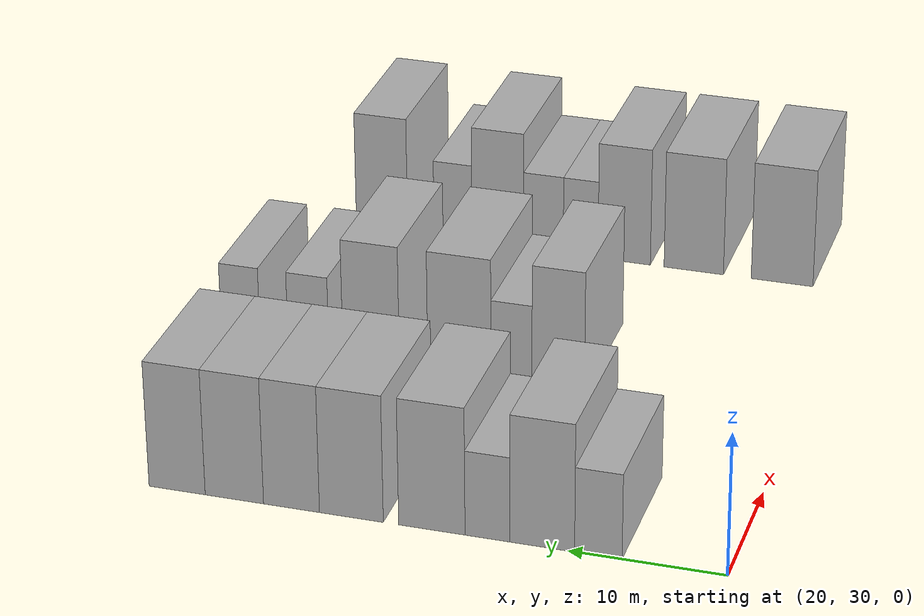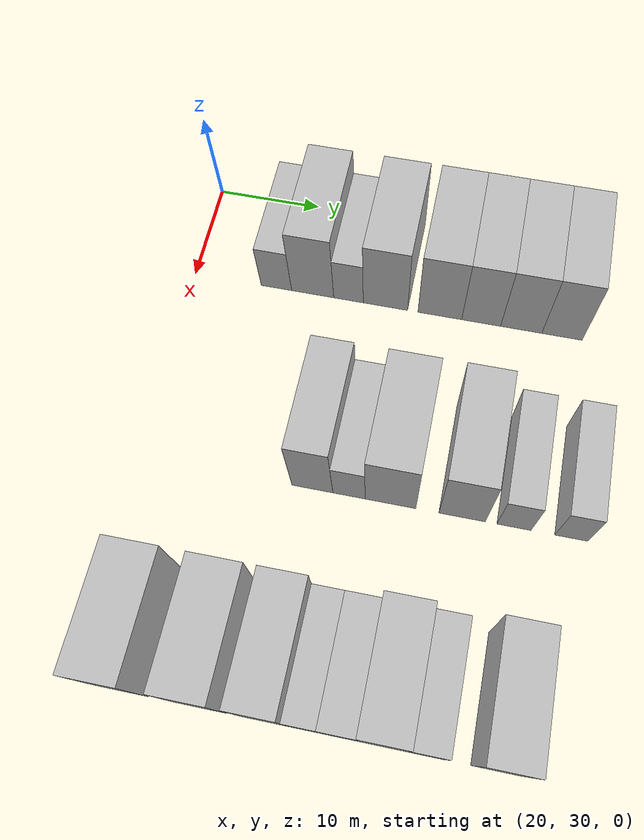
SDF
<sdf version="1.6">
 <world name="default">
  <model name="building_66">
   <static>1</static>
   <pose>25.0000 38.0858 0 0.000000 0.000000 0.000000</pose>
   <link name="link">
    <pose>0 0 3.00 0 0 0</pose>
    <collision name="collision"><geometry><box><size>10.0000 2.9948 6.0000</size></box></geometry></collision>
    <visual name="visual">
     <cast_shadows>0</cast_shadows>
     <geometry><box><size>10.0000 2.9948 6.0000</size></box></geometry>
     <material>
      <script>
       <uri>model://HANNAS_wall/materials/scripts</uri>
       <uri>model://HANNAS_wall/materials/textures</uri>
       <name>vrc/HANNAS_wall</name>
      </script>
     </material>
    </visual>
   </link>
  </model>
  <model name="building_67">
   <static>1</static>
   <pose>25.0000 41.6446 0 0.000000 0.000000 0.000000</pose>
   <link name="link">
    <pose>0 0 4.50 0 0 0</pose>
    <collision name="collision"><geometry><box><size>10.0000 4.1228 9.0000</size></box></geometry></collision>
    <visual name="visual">
     <cast_shadows>0</cast_shadows>
     <geometry><box><size>10.0000 4.1228 9.0000</size></box></geometry>
     <material>
      <script>
       <uri>model://HANNAS_wall/materials/scripts</uri>
       <uri>model://HANNAS_wall/materials/textures</uri>
       <name>vrc/HANNAS_wall</name>
      </script>
     </material>
    </visual>
   </link>
  </model>
  <model name="building_68">
   <static>1</static>
   <pose>25.0000 45.1408 0 0.000000 0.000000 0.000000</pose>
   <link name="link">
    <pose>0 0 3.00 0 0 0</pose>
    <collision name="collision"><geometry><box><size>10.0000 2.8695 6.0000</size></box></geometry></collision>
    <visual name="visual">
     <cast_shadows>0</cast_shadows>
     <geometry><box><size>10.0000 2.8695 6.0000</size></box></geometry>
     <material>
      <script>
       <uri>model://HANNAS_wall/materials/scripts</uri>
       <uri>model://HANNAS_wall/materials/textures</uri>
       <name>vrc/HANNAS_wall</name>
      </script>
     </material>
    </visual>
   </link>
  </model>
  <model name="building_69">
   <static>1</static>
   <pose>25.0000 48.7208 0 0.000000 0.000000 0.000000</pose>
   <link name="link">
    <pose>0 0 4.50 0 0 0</pose>
    <collision name="collision"><geometry><box><size>10.0000 4.2906 9.0000</size></box></geometry></collision>
    <visual name="visual">
     <cast_shadows>0</cast_shadows>
     <geometry><box><size>10.0000 4.2906 9.0000</size></box></geometry>
     <material>
      <script>
       <uri>model://HANNAS_wall/materials/scripts</uri>
       <uri>model://HANNAS_wall/materials/textures</uri>
       <name>vrc/HANNAS_wall</name>
      </script>
     </material>
    </visual>
   </link>
  </model>
  <model name="building_70">
   <static>1</static>
   <pose>25.0000 53.9550 0 0.000000 0.000000 0.000000</pose>
   <link name="link">
    <pose>0 0 4.50 0 0 0</pose>
    <collision name="collision"><geometry><box><size>10.0000 4.1778 9.0000</size></box></geometry></collision>
    <visual name="visual">
     <cast_shadows>0</cast_shadows>
     <geometry><box><size>10.0000 4.1778 9.0000</size></box></geometry>
     <material>
      <script>
       <uri>model://HANNAS_wall/materials/scripts</uri>
       <uri>model://HANNAS_wall/materials/textures</uri>
       <name>vrc/HANNAS_wall</name>
      </script>
     </material>
    </visual>
   </link>
  </model>
  <model name="building_71">
   <static>1</static>
   <pose>25.0000 57.8908 0 0.000000 0.000000 0.000000</pose>
   <link name="link">
    <pose>0 0 4.50 0 0 0</pose>
    <collision name="collision"><geometry><box><size>10.0000 3.6938 9.0000</size></box></geometry></collision>
    <visual name="visual">
     <cast_shadows>0</cast_shadows>
     <geometry><box><size>10.0000 3.6938 9.0000</size></box></geometry>
     <material>
      <script>
       <uri>model://HANNAS_wall/materials/scripts</uri>
       <uri>model://HANNAS_wall/materials/textures</uri>
       <name>vrc/HANNAS_wall</name>
      </script>
     </material>
    </visual>
   </link>
  </model>
  <model name="building_72">
   <static>1</static>
   <pose>25.0000 61.6819 0 0.000000 0.000000 0.000000</pose>
   <link name="link">
    <pose>0 0 4.50 0 0 0</pose>
    <collision name="collision"><geometry><box><size>10.0000 3.8883 9.0000</size></box></geometry></collision>
    <visual name="visual">
     <cast_shadows>0</cast_shadows>
     <geometry><box><size>10.0000 3.8883 9.0000</size></box></geometry>
     <material>
      <script>
       <uri>model://HANNAS_wall/materials/scripts</uri>
       <uri>model://HANNAS_wall/materials/textures</uri>
       <name>vrc/HANNAS_wall</name>
      </script>
     </material>
    </visual>
   </link>
  </model>
  <model name="building_73">
   <static>1</static>
   <pose>25.0000 65.5108 0 0.000000 0.000000 0.000000</pose>
   <link name="link">
    <pose>0 0 4.50 0 0 0</pose>
    <collision name="collision"><geometry><box><size>10.0000 3.7694 9.0000</size></box></geometry></collision>
    <visual name="visual">
     <cast_shadows>0</cast_shadows>
     <geometry><box><size>10.0000 3.7694 9.0000</size></box></geometry>
     <material>
      <script>
       <uri>model://HANNAS_wall/materials/scripts</uri>
       <uri>model://HANNAS_wall/materials/textures</uri>
       <name>vrc/HANNAS_wall</name>
      </script>
     </material>
    </visual>
   </link>
  </model>
  <model name="building_179">
   <static>1</static>
   <pose>44.0000 45.9286 0 0.000000 0.000000 0.000000</pose>
   <link name="link">
    <pose>0 0 4.50 0 0 0</pose>
    <collision name="collision"><geometry><box><size>10.0000 3.6117 9.0000</size></box></geometry></collision>
    <visual name="visual">
     <cast_shadows>0</cast_shadows>
     <geometry><box><size>10.0000 3.6117 9.0000</size></box></geometry>
     <material>
      <script>
       <uri>model://HANNAS_wall/materials/scripts</uri>
       <uri>model://HANNAS_wall/materials/textures</uri>
       <name>vrc/HANNAS_wall</name>
      </script>
     </material>
    </visual>
   </link>
  </model>
  <model name="building_180">
   <static>1</static>
   <pose>44.0000 49.1493 0 0.000000 0.000000 0.000000</pose>
   <link name="link">
    <pose>0 0 3.00 0 0 0</pose>
    <collision name="collision"><geometry><box><size>10.0000 2.8298 6.0000</size></box></geometry></collision>
    <visual name="visual">
     <cast_shadows>0</cast_shadows>
     <geometry><box><size>10.0000 2.8298 6.0000</size></box></geometry>
     <material>
      <script>
       <uri>model://HANNAS_wall/materials/scripts</uri>
       <uri>model://HANNAS_wall/materials/textures</uri>
       <name>vrc/HANNAS_wall</name>
      </script>
     </material>
    </visual>
   </link>
  </model>
  <model name="building_181">
   <static>1</static>
   <pose>44.0000 52.7676 0 0.000000 0.000000 0.000000</pose>
   <link name="link">
    <pose>0 0 4.50 0 0 0</pose>
    <collision name="collision"><geometry><box><size>10.0000 4.4067 9.0000</size></box></geometry></collision>
    <visual name="visual">
     <cast_shadows>0</cast_shadows>
     <geometry><box><size>10.0000 4.4067 9.0000</size></box></geometry>
     <material>
      <script>
       <uri>model://HANNAS_wall/materials/scripts</uri>
       <uri>model://HANNAS_wall/materials/textures</uri>
       <name>vrc/HANNAS_wall</name>
      </script>
     </material>
    </visual>
   </link>
  </model>
  <model name="building_182">
   <static>1</static>
   <pose>44.0000 58.9594 0 0.000000 0.000000 0.000000</pose>
   <link name="link">
    <pose>0 0 4.50 0 0 0</pose>
    <collision name="collision"><geometry><box><size>10.0000 3.9770 9.0000</size></box></geometry></collision>
    <visual name="visual">
     <cast_shadows>0</cast_shadows>
     <geometry><box><size>10.0000 3.9770 9.0000</size></box></geometry>
     <material>
      <script>
       <uri>model://HANNAS_wall/materials/scripts</uri>
       <uri>model://HANNAS_wall/materials/textures</uri>
       <name>vrc/HANNAS_wall</name>
      </script>
     </material>
    </visual>
   </link>
  </model>
  <model name="building_183">
   <static>1</static>
   <pose>44.0000 63.3999 0 0.000000 0.000000 0.000000</pose>
   <link name="link">
    <pose>0 0 3.00 0 0 0</pose>
    <collision name="collision"><geometry><box><size>10.0000 2.9041 6.0000</size></box></geometry></collision>
    <visual name="visual">
     <cast_shadows>0</cast_shadows>
     <geometry><box><size>10.0000 2.9041 6.0000</size></box></geometry>
     <material>
      <script>
       <uri>model://HANNAS_wall/materials/scripts</uri>
       <uri>model://HANNAS_wall/materials/textures</uri>
       <name>vrc/HANNAS_wall</name>
      </script>
     </material>
    </visual>
   </link>
  </model>
  <model name="building_184">
   <static>1</static>
   <pose>44.0000 68.2413 0 0.000000 0.000000 0.000000</pose>
   <link name="link">
    <pose>0 0 3.00 0 0 0</pose>
    <collision name="collision"><geometry><box><size>10.0000 2.7786 6.0000</size></box></geometry></collision>
    <visual name="visual">
     <cast_shadows>0</cast_shadows>
     <geometry><box><size>10.0000 2.7786 6.0000</size></box></geometry>
     <material>
      <script>
       <uri>model://HANNAS_wall/materials/scripts</uri>
       <uri>model://HANNAS_wall/materials/textures</uri>
       <name>vrc/HANNAS_wall</name>
      </script>
     </material>
    </visual>
   </link>
  </model>
  <model name="building_291">
   <static>1</static>
   <pose>63.0000 34.9427 0 0.000000 0.000000 0.000000</pose>
   <link name="link">
    <pose>0 0 4.50 0 0 0</pose>
    <collision name="collision"><geometry><box><size>10.0000 4.4236 9.0000</size></box></geometry></collision>
    <visual name="visual">
     <cast_shadows>0</cast_shadows>
     <geometry><box><size>10.0000 4.4236 9.0000</size></box></geometry>
     <material>
      <script>
       <uri>model://HANNAS_wall/materials/scripts</uri>
       <uri>model://HANNAS_wall/materials/textures</uri>
       <name>vrc/HANNAS_wall</name>
      </script>
     </material>
    </visual>
   </link>
  </model>
  <model name="building_292">
   <static>1</static>
   <pose>63.0000 41.3076 0 0.000000 0.000000 0.000000</pose>
   <link name="link">
    <pose>0 0 4.50 0 0 0</pose>
    <collision name="collision"><geometry><box><size>10.0000 4.3062 9.0000</size></box></geometry></collision>
    <visual name="visual">
     <cast_shadows>0</cast_shadows>
     <geometry><box><size>10.0000 4.3062 9.0000</size></box></geometry>
     <material>
      <script>
       <uri>model://HANNAS_wall/materials/scripts</uri>
       <uri>model://HANNAS_wall/materials/textures</uri>
       <name>vrc/HANNAS_wall</name>
      </script>
     </material>
    </visual>
   </link>
  </model>
  <model name="building_293">
   <static>1</static>
   <pose>63.0000 46.3780 0 0.000000 0.000000 0.000000</pose>
   <link name="link">
    <pose>0 0 4.50 0 0 0</pose>
    <collision name="collision"><geometry><box><size>10.0000 3.8345 9.0000</size></box></geometry></collision>
    <visual name="visual">
     <cast_shadows>0</cast_shadows>
     <geometry><box><size>10.0000 3.8345 9.0000</size></box></geometry>
     <material>
      <script>
       <uri>model://HANNAS_wall/materials/scripts</uri>
       <uri>model://HANNAS_wall/materials/textures</uri>
       <name>vrc/HANNAS_wall</name>
      </script>
     </material>
    </visual>
   </link>
  </model>
  <model name="building_294">
   <static>1</static>
   <pose>63.0000 49.5761 0 0.000000 0.000000 0.000000</pose>
   <link name="link">
    <pose>0 0 3.00 0 0 0</pose>
    <collision name="collision"><geometry><box><size>10.0000 2.5617 6.0000</size></box></geometry></collision>
    <visual name="visual">
     <cast_shadows>0</cast_shadows>
     <geometry><box><size>10.0000 2.5617 6.0000</size></box></geometry>
     <material>
      <script>
       <uri>model://HANNAS_wall/materials/scripts</uri>
       <uri>model://HANNAS_wall/materials/textures</uri>
       <name>vrc/HANNAS_wall</name>
      </script>
     </material>
    </visual>
   </link>
  </model>
  <model name="building_295">
   <static>1</static>
   <pose>63.0000 52.3209 0 0.000000 0.000000 0.000000</pose>
   <link name="link">
    <pose>0 0 3.00 0 0 0</pose>
    <collision name="collision"><geometry><box><size>10.0000 2.9280 6.0000</size></box></geometry></collision>
    <visual name="visual">
     <cast_shadows>0</cast_shadows>
     <geometry><box><size>10.0000 2.9280 6.0000</size></box></geometry>
     <material>
      <script>
       <uri>model://HANNAS_wall/materials/scripts</uri>
       <uri>model://HANNAS_wall/materials/textures</uri>
       <name>vrc/HANNAS_wall</name>
      </script>
     </material>
    </visual>
   </link>
  </model>
  <model name="building_296">
   <static>1</static>
   <pose>63.0000 55.7183 0 0.000000 0.000000 0.000000</pose>
   <link name="link">
    <pose>0 0 4.50 0 0 0</pose>
    <collision name="collision"><geometry><box><size>10.0000 3.8667 9.0000</size></box></geometry></collision>
    <visual name="visual">
     <cast_shadows>0</cast_shadows>
     <geometry><box><size>10.0000 3.8667 9.0000</size></box></geometry>
     <material>
      <script>
       <uri>model://HANNAS_wall/materials/scripts</uri>
       <uri>model://HANNAS_wall/materials/textures</uri>
       <name>vrc/HANNAS_wall</name>
      </script>
     </material>
    </visual>
   </link>
  </model>
  <model name="building_297">
   <static>1</static>
   <pose>63.0000 59.0751 0 0.000000 0.000000 0.000000</pose>
   <link name="link">
    <pose>0 0 3.00 0 0 0</pose>
    <collision name="collision"><geometry><box><size>10.0000 2.8471 6.0000</size></box></geometry></collision>
    <visual name="visual">
     <cast_shadows>0</cast_shadows>
     <geometry><box><size>10.0000 2.8471 6.0000</size></box></geometry>
     <material>
      <script>
       <uri>model://HANNAS_wall/materials/scripts</uri>
       <uri>model://HANNAS_wall/materials/textures</uri>
       <name>vrc/HANNAS_wall</name>
      </script>
     </material>
    </visual>
   </link>
  </model>
  <model name="building_298">
   <static>1</static>
   <pose>63.0000 64.4396 0 0.000000 0.000000 0.000000</pose>
   <link name="link">
    <pose>0 0 4.50 0 0 0</pose>
    <collision name="collision"><geometry><box><size>10.0000 3.8817 9.0000</size></box></geometry></collision>
    <visual name="visual">
     <cast_shadows>0</cast_shadows>
     <geometry><box><size>10.0000 3.8817 9.0000</size></box></geometry>
     <material>
      <script>
       <uri>model://HANNAS_wall/materials/scripts</uri>
       <uri>model://HANNAS_wall/materials/textures</uri>
       <name>vrc/HANNAS_wall</name>
      </script>
     </material>
    </visual>
   </link>
  </model>
 </world>
</sdf>
